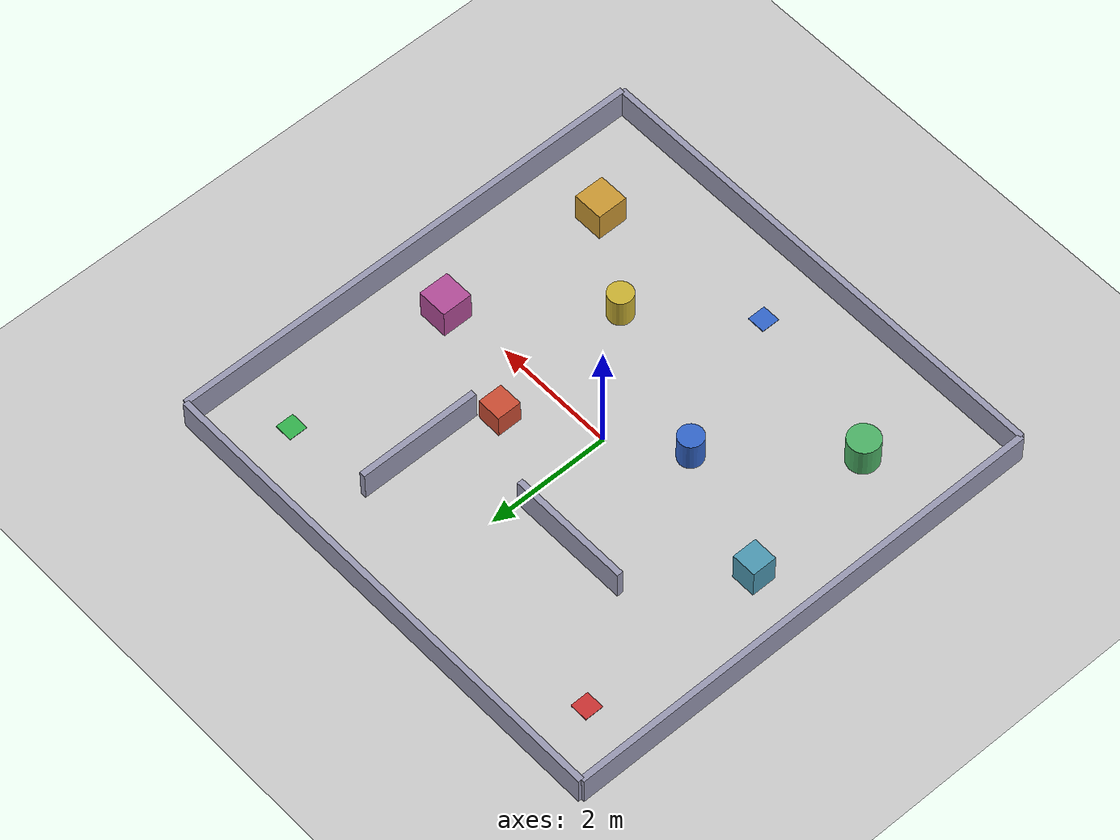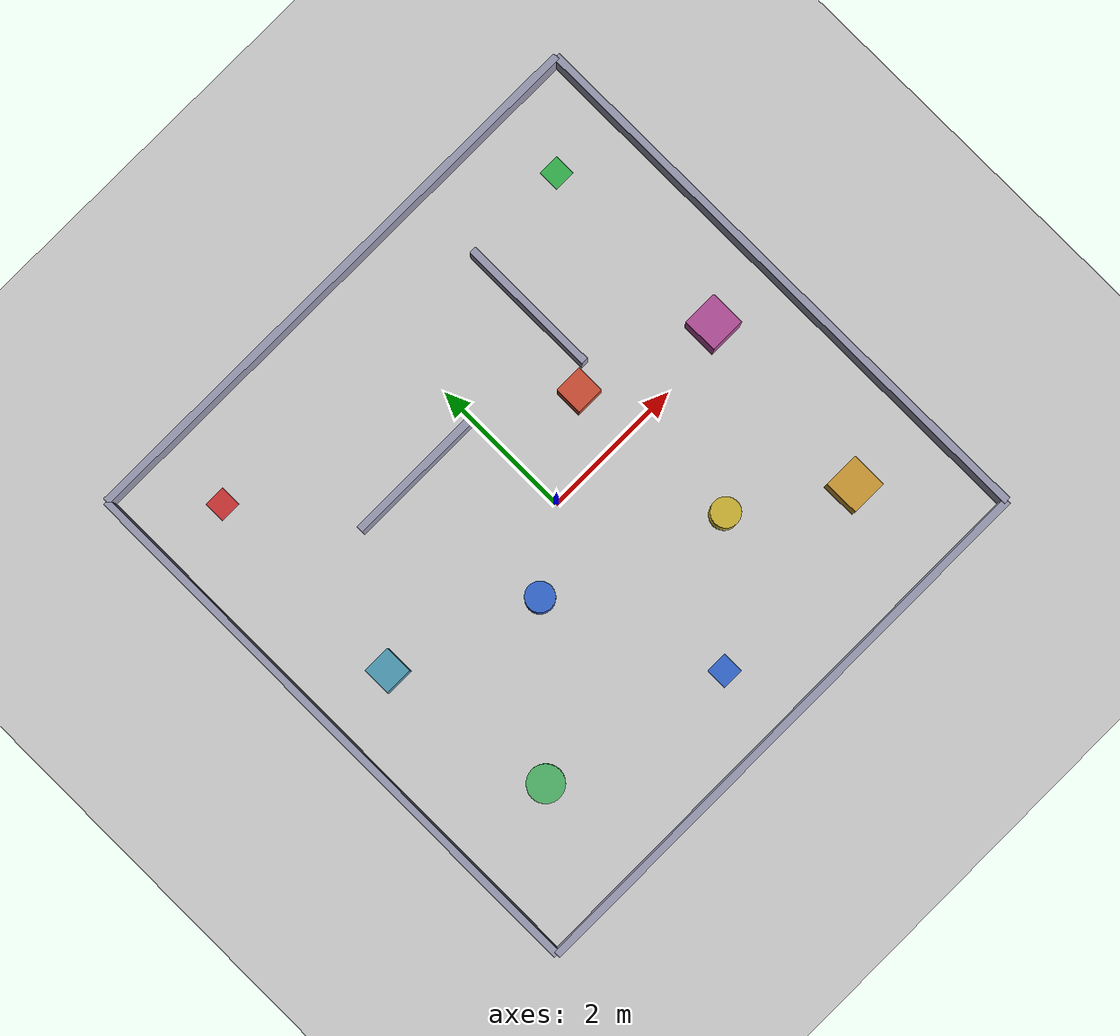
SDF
<?xml version="1.0"?>
<!-- Monde Bootcamp : sol plat + quelques obstacles + murs, pour tester la base
     LeKiwi (teleop, SLAM, Nav2) dans Gazebo Ionic (gz-sim 9). -->
<sdf version="1.9">
  <world name="bootcamp">

    <physics name="1ms" type="ignored">
      <max_step_size>0.001</max_step_size>
      <real_time_factor>1.0</real_time_factor>
    </physics>

    <plugin filename="gz-sim-physics-system"
            name="gz::sim::systems::Physics"/>
    <plugin filename="gz-sim-user-commands-system"
            name="gz::sim::systems::UserCommands"/>
    <plugin filename="gz-sim-scene-broadcaster-system"
            name="gz::sim::systems::SceneBroadcaster"/>
    <plugin filename="gz-sim-sensors-system"
            name="gz::sim::systems::Sensors">
      <render_engine>ogre2</render_engine>
    </plugin>
    <plugin filename="gz-sim-imu-system"
            name="gz::sim::systems::Imu"/>

    <light type="directional" name="sun">
      <cast_shadows>true</cast_shadows>
      <pose>0 0 10 0 0 0</pose>
      <diffuse>0.9 0.9 0.9 1</diffuse>
      <specular>0.2 0.2 0.2 1</specular>
      <direction>-0.5 0.3 -1</direction>
    </light>

    <!-- Sol -->
    <model name="ground_plane">
      <static>true</static>
      <link name="link">
        <collision name="collision">
          <geometry><plane><normal>0 0 1</normal><size>50 50</size></plane></geometry>
        </collision>
        <visual name="visual">
          <geometry><plane><normal>0 0 1</normal><size>50 50</size></plane></geometry>
          <material>
            <ambient>0.8 0.8 0.8 1</ambient>
            <diffuse>0.8 0.8 0.8 1</diffuse>
          </material>
        </visual>
      </link>
    </model>

    <!-- ====================== Murs d'enceinte (8 x 8 m) ===================== -->
    <model name="wall_north">
      <static>true</static>
      <pose>0 4 0.25 0 0 0</pose>
      <link name="link">
        <collision name="c"><geometry><box><size>8 0.1 0.5</size></box></geometry></collision>
        <visual name="v"><geometry><box><size>8 0.1 0.5</size></box></geometry>
          <material><ambient>0.6 0.6 0.7 1</ambient><diffuse>0.6 0.6 0.7 1</diffuse></material></visual>
      </link>
    </model>
    <model name="wall_south">
      <static>true</static>
      <pose>0 -4 0.25 0 0 0</pose>
      <link name="link">
        <collision name="c"><geometry><box><size>8 0.1 0.5</size></box></geometry></collision>
        <visual name="v"><geometry><box><size>8 0.1 0.5</size></box></geometry>
          <material><ambient>0.6 0.6 0.7 1</ambient><diffuse>0.6 0.6 0.7 1</diffuse></material></visual>
      </link>
    </model>
    <model name="wall_east">
      <static>true</static>
      <pose>4 0 0.25 0 0 0</pose>
      <link name="link">
        <collision name="c"><geometry><box><size>0.1 8 0.5</size></box></geometry></collision>
        <visual name="v"><geometry><box><size>0.1 8 0.5</size></box></geometry>
          <material><ambient>0.6 0.6 0.7 1</ambient><diffuse>0.6 0.6 0.7 1</diffuse></material></visual>
      </link>
    </model>
    <model name="wall_west">
      <static>true</static>
      <pose>-4 0 0.25 0 0 0</pose>
      <link name="link">
        <collision name="c"><geometry><box><size>0.1 8 0.5</size></box></geometry></collision>
        <visual name="v"><geometry><box><size>0.1 8 0.5</size></box></geometry>
          <material><ambient>0.6 0.6 0.7 1</ambient><diffuse>0.6 0.6 0.7 1</diffuse></material></visual>
      </link>
    </model>

    <!-- Cloison interieure : cree un recoin pour une meilleure fermeture de boucle SLAM -->
    <model name="inner_wall">
      <static>true</static>
      <pose>-1.0 1.5 0.25 0 0 0</pose>
      <link name="link">
        <collision name="c"><geometry><box><size>2 0.1 0.5</size></box></geometry></collision>
        <visual name="v"><geometry><box><size>2 0.1 0.5</size></box></geometry>
          <material><ambient>0.6 0.6 0.7 1</ambient><diffuse>0.6 0.6 0.7 1</diffuse></material></visual>
      </link>
    </model>

    <model name="zone_a">
      <static>true</static>
      <pose>-3 3 0.005 0 0 0</pose>
      <link name="link">
        <visual name="v"><geometry><box><size>0.3 0.3 0.01</size></box></geometry>
          <material><ambient>0.8 0.2 0.2 1</ambient><diffuse>0.8 0.2 0.2 1</diffuse></material></visual>
      </link>
    </model>
    <model name="zone_b">
      <static>true</static>
      <pose>3 3 0.005 0 0 0</pose>
      <link name="link">
        <visual name="v"><geometry><box><size>0.3 0.3 0.01</size></box></geometry>
          <material><ambient>0.2 0.7 0.3 1</ambient><diffuse>0.2 0.7 0.3 1</diffuse></material></visual>
      </link>
    </model>
    <model name="zone_c">
      <static>true</static>
      <pose>0 -3 0.005 0 0 0</pose>
      <link name="link">
        <visual name="v"><geometry><box><size>0.3 0.3 0.01</size></box></geometry>
          <material><ambient>0.2 0.4 0.8 1</ambient><diffuse>0.2 0.4 0.8 1</diffuse></material></visual>
      </link>
    </model>

    <!-- ====================== Obstacles ==================================== -->
    <model name="box_obstacle">
      <static>true</static>
      <pose>1.2 0.8 0.2 0 0 0</pose>
      <link name="link">
        <collision name="c"><geometry><box><size>0.4 0.4 0.4</size></box></geometry></collision>
        <visual name="v"><geometry><box><size>0.4 0.4 0.4</size></box></geometry>
          <material><ambient>0.8 0.3 0.2 1</ambient><diffuse>0.8 0.3 0.2 1</diffuse></material></visual>
      </link>
    </model>
    <model name="cylinder_obstacle">
      <static>true</static>
      <pose>-1.0 -0.7 0.25 0 0 0</pose>
      <link name="link">
        <collision name="c"><geometry><cylinder><radius>0.2</radius><length>0.5</length></cylinder></geometry></collision>
        <visual name="v"><geometry><cylinder><radius>0.2</radius><length>0.5</length></cylinder></geometry>
          <material><ambient>0.2 0.4 0.8 1</ambient><diffuse>0.2 0.4 0.8 1</diffuse></material></visual>
      </link>
    </model>
    <model name="box_obstacle_2">
      <static>true</static>
      <pose>2.8 -2.5 0.25 0 0 0</pose>
      <link name="link">
        <collision name="c"><geometry><box><size>0.5 0.5 0.5</size></box></geometry></collision>
        <visual name="v"><geometry><box><size>0.5 0.5 0.5</size></box></geometry>
          <material><ambient>0.8 0.6 0.2 1</ambient><diffuse>0.8 0.6 0.2 1</diffuse></material></visual>
      </link>
    </model>
    <model name="cylinder_obstacle_2">
      <static>true</static>
      <pose>-2.6 -2.4 0.25 0 0 0</pose>
      <link name="link">
        <collision name="c"><geometry><cylinder><radius>0.25</radius><length>0.5</length></cylinder></geometry></collision>
        <visual name="v"><geometry><cylinder><radius>0.25</radius><length>0.5</length></cylinder></geometry>
          <material><ambient>0.3 0.7 0.4 1</ambient><diffuse>0.3 0.7 0.4 1</diffuse></material></visual>
      </link>
    </model>
    <model name="box_obstacle_3">
      <static>true</static>
      <pose>3 0.2 0.25 0 0 0</pose>
      <link name="link">
        <collision name="c"><geometry><box><size>0.5 0.5 0.5</size></box></geometry></collision>
        <visual name="v"><geometry><box><size>0.5 0.5 0.5</size></box></geometry>
          <material><ambient>0.7 0.3 0.6 1</ambient><diffuse>0.7 0.3 0.6 1</diffuse></material></visual>
      </link>
    </model>
    <model name="box_obstacle_4">
      <static>true</static>
      <pose>-3 0 0.25 0 0 0</pose>
      <link name="link">
        <collision name="c"><geometry><box><size>0.4 0.4 0.5</size></box></geometry></collision>
        <visual name="v"><geometry><box><size>0.4 0.4 0.5</size></box></geometry>
          <material><ambient>0.3 0.6 0.7 1</ambient><diffuse>0.3 0.6 0.7 1</diffuse></material></visual>
      </link>
    </model>
    <model name="cylinder_obstacle_3">
      <static>true</static>
      <pose>1.4 -1.6 0.25 0 0 0</pose>
      <link name="link">
        <collision name="c"><geometry><cylinder><radius>0.2</radius><length>0.5</length></cylinder></geometry></collision>
        <visual name="v"><geometry><cylinder><radius>0.2</radius><length>0.5</length></cylinder></geometry>
          <material><ambient>0.8 0.7 0.2 1</ambient><diffuse>0.8 0.7 0.2 1</diffuse></material></visual>
      </link>
    </model>

    <!-- 2e cloison : cree un couloir entre le centre et la zone B (en haut a droite) -->
    <model name="inner_wall_2">
      <static>true</static>
      <pose>1.5 2 0.25 0 0 0</pose>
      <link name="link">
        <collision name="c"><geometry><box><size>0.1 2 0.5</size></box></geometry></collision>
        <visual name="v"><geometry><box><size>0.1 2 0.5</size></box></geometry>
          <material><ambient>0.6 0.6 0.7 1</ambient><diffuse>0.6 0.6 0.7 1</diffuse></material></visual>
      </link>
    </model>

  </world>
</sdf>
